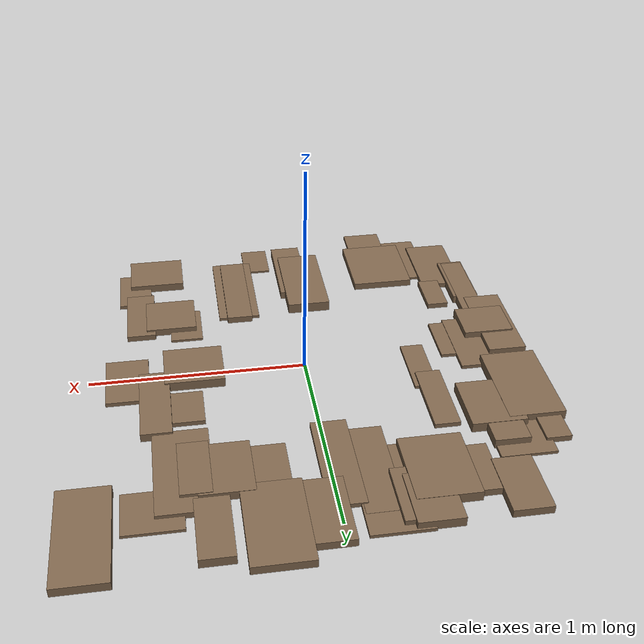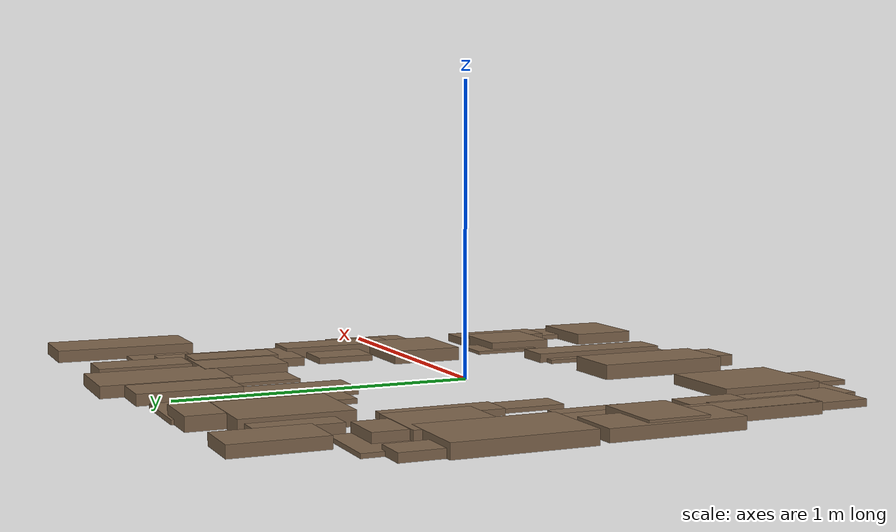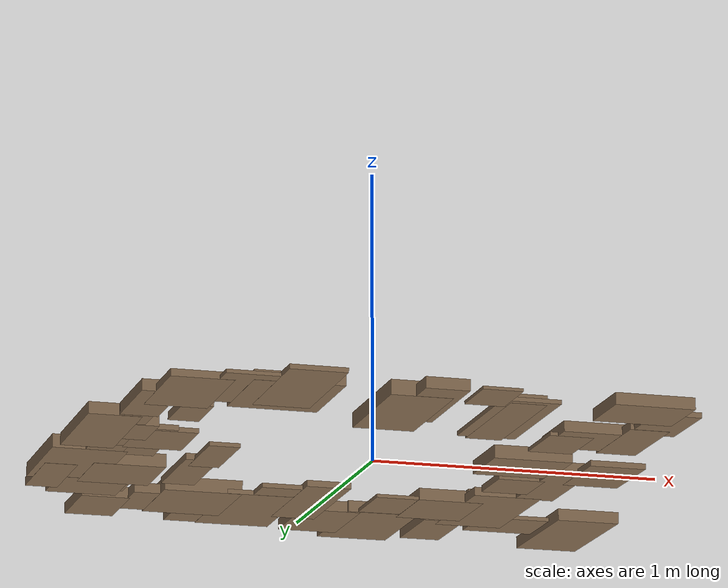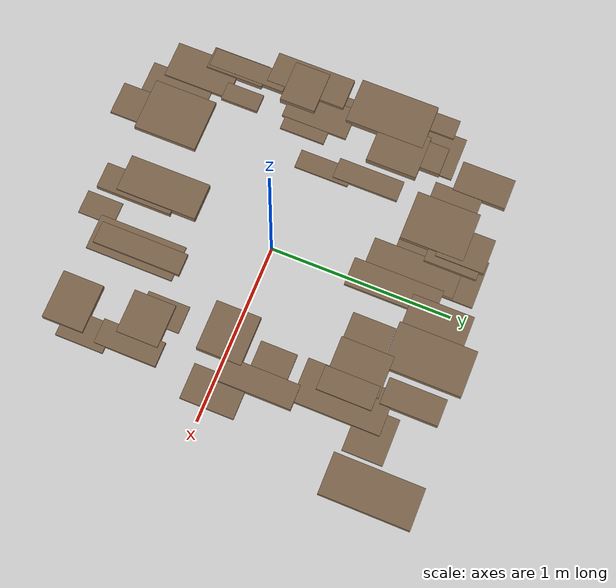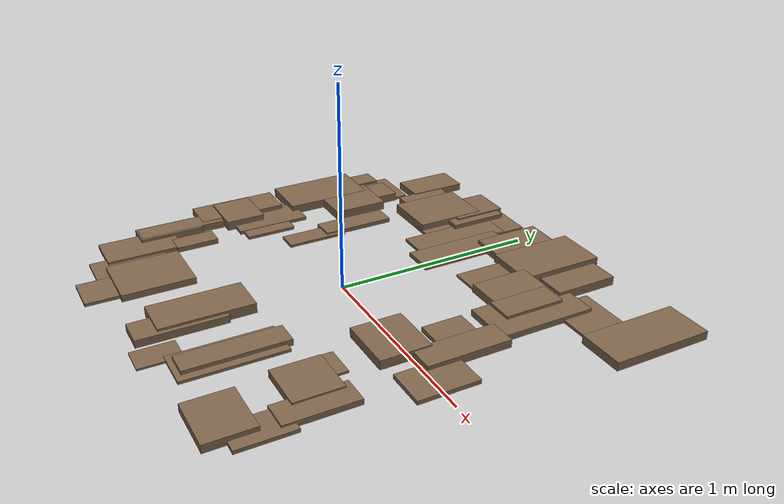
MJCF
<?xml version='1.0' encoding='UTF-8'?>
<mujoco model="stairs_scene">
  <asset/>
  <worldbody>
    <body name="stair_0" pos="-0.9636574095352295 -0.16244551583372746 0.019907603688683363">
      <geom type="box" size="0.089 0.222 0.020" rgba="0.5 0.4 0.3 1" contype="1" conaffinity="1" friction="1 0.005 0.0001"/>
    </body>
    <body name="stair_1" pos="-0.8119093473884338 -0.04998023018529252 0.009454931167921454">
      <geom type="box" size="0.091 0.185 0.009" rgba="0.5 0.4 0.3 1" contype="1" conaffinity="1" friction="1 0.005 0.0001"/>
    </body>
    <body name="stair_2" pos="-0.7870402159515202 0.5423465916035355 0.02234461127870831">
      <geom type="box" size="0.079 0.133 0.022" rgba="0.5 0.4 0.3 1" contype="1" conaffinity="1" friction="1 0.005 0.0001"/>
    </body>
    <body name="stair_3" pos="0.8236481937681119 0.020164516491206763 0.009603368127131143">
      <geom type="box" size="0.098 0.148 0.010" rgba="0.5 0.4 0.3 1" contype="1" conaffinity="1" friction="1 0.005 0.0001"/>
    </body>
    <body name="stair_4" pos="0.5551490735679114 0.6476831728476034 0.0221028211666639">
      <geom type="box" size="0.067 0.150 0.022" rgba="0.5 0.4 0.3 1" contype="1" conaffinity="1" friction="1 0.005 0.0001"/>
    </body>
    <body name="stair_5" pos="-0.7660958446419484 0.4235902248144441 0.02294797520268138">
      <geom type="box" size="0.124 0.141 0.023" rgba="0.5 0.4 0.3 1" contype="1" conaffinity="1" friction="1 0.005 0.0001"/>
    </body>
    <body name="stair_6" pos="0.49749306452180875 0.9797280946985878 0.0221237213537737">
      <geom type="box" size="0.073 0.157 0.022" rgba="0.5 0.4 0.3 1" contype="1" conaffinity="1" friction="1 0.005 0.0001"/>
    </body>
    <body name="stair_7" pos="-0.2183035395244346 0.84648129742307 0.007941587903691023">
      <geom type="box" size="0.133 0.242 0.008" rgba="0.5 0.4 0.3 1" contype="1" conaffinity="1" friction="1 0.005 0.0001"/>
    </body>
    <body name="stair_8" pos="-0.299887708913362 0.9105924794842348 0.01949932096551827">
      <geom type="box" size="0.071 0.145 0.019" rgba="0.5 0.4 0.3 1" contype="1" conaffinity="1" friction="1 0.005 0.0001"/>
    </body>
    <body name="stair_9" pos="-0.7378889314338948 -0.4737876916565482 0.013095368606770331">
      <geom type="box" size="0.051 0.105 0.013" rgba="0.5 0.4 0.3 1" contype="1" conaffinity="1" friction="1 0.005 0.0001"/>
    </body>
    <body name="stair_10" pos="0.5359801796000183 -0.38555590045506616 0.005925284446656738">
      <geom type="box" size="0.076 0.117 0.006" rgba="0.5 0.4 0.3 1" contype="1" conaffinity="1" friction="1 0.005 0.0001"/>
    </body>
    <body name="stair_11" pos="-0.8968933902620082 -0.49741738485564335 0.01941332782059265">
      <geom type="box" size="0.054 0.216 0.019" rgba="0.5 0.4 0.3 1" contype="1" conaffinity="1" friction="1 0.005 0.0001"/>
    </body>
    <body name="stair_12" pos="-0.942895550078771 0.3190721381124999 0.023388407456993856">
      <geom type="box" size="0.128 0.220 0.023" rgba="0.5 0.4 0.3 1" contype="1" conaffinity="1" friction="1 0.005 0.0001"/>
    </body>
    <body name="stair_13" pos="-0.5007960997877932 -0.768473920179062 0.016962226391960895">
      <geom type="box" size="0.148 0.177 0.017" rgba="0.5 0.4 0.3 1" contype="1" conaffinity="1" friction="1 0.005 0.0001"/>
    </body>
    <body name="stair_14" pos="0.5178956370636532 -0.0254749309550506 0.023211735469781485">
      <geom type="box" size="0.137 0.124 0.023" rgba="0.5 0.4 0.3 1" contype="1" conaffinity="1" friction="1 0.005 0.0001"/>
    </body>
    <body name="stair_15" pos="0.2667039108159166 0.6445040113232541 0.006412909336489017">
      <geom type="box" size="0.102 0.119 0.006" rgba="0.5 0.4 0.3 1" contype="1" conaffinity="1" friction="1 0.005 0.0001"/>
    </body>
    <body name="stair_16" pos="-0.5482344443179159 0.33390068585938426 0.011373465440488374">
      <geom type="box" size="0.058 0.183 0.011" rgba="0.5 0.4 0.3 1" contype="1" conaffinity="1" friction="1 0.005 0.0001"/>
    </body>
    <body name="stair_17" pos="-0.5810424350625996 0.8052713293910698 0.017193089984751712">
      <geom type="box" size="0.085 0.132 0.017" rgba="0.5 0.4 0.3 1" contype="1" conaffinity="1" friction="1 0.005 0.0001"/>
    </body>
    <body name="stair_18" pos="-0.1755938571618043 0.7303312323630342 0.0083401034865772">
      <geom type="box" size="0.082 0.246 0.008" rgba="0.5 0.4 0.3 1" contype="1" conaffinity="1" friction="1 0.005 0.0001"/>
    </body>
    <body name="stair_19" pos="0.13447392807709657 -0.9258468366677541 0.005102494794811506">
      <geom type="box" size="0.066 0.101 0.005" rgba="0.5 0.4 0.3 1" contype="1" conaffinity="1" friction="1 0.005 0.0001"/>
    </body>
    <body name="stair_20" pos="0.2665338741222807 -0.6341633617193141 0.016097098894323626">
      <geom type="box" size="0.061 0.245 0.016" rgba="0.5 0.4 0.3 1" contype="1" conaffinity="1" friction="1 0.005 0.0001"/>
    </body>
    <body name="stair_21" pos="-0.7495095732961745 -0.09097349195455506 0.00832013399848876">
      <geom type="box" size="0.100 0.126 0.008" rgba="0.5 0.4 0.3 1" contype="1" conaffinity="1" friction="1 0.005 0.0001"/>
    </body>
    <body name="stair_22" pos="-0.9131595507067489 -0.17677812138324844 0.0239720646758096">
      <geom type="box" size="0.118 0.100 0.024" rgba="0.5 0.4 0.3 1" contype="1" conaffinity="1" friction="1 0.005 0.0001"/>
    </body>
    <body name="stair_23" pos="-0.8055023210340766 -0.7350900959230158 0.01188184527727354">
      <geom type="box" size="0.103 0.187 0.012" rgba="0.5 0.4 0.3 1" contype="1" conaffinity="1" friction="1 0.005 0.0001"/>
    </body>
    <body name="stair_24" pos="0.6066615893945073 -0.45114422181156666 0.01796324049683212">
      <geom type="box" size="0.120 0.116 0.018" rgba="0.5 0.4 0.3 1" contype="1" conaffinity="1" friction="1 0.005 0.0001"/>
    </body>
    <body name="stair_25" pos="-0.9924946305753957 0.5012057167883688 0.013833827113956712">
      <geom type="box" size="0.056 0.174 0.014" rgba="0.5 0.4 0.3 1" contype="1" conaffinity="1" friction="1 0.005 0.0001"/>
    </body>
    <body name="stair_26" pos="-0.034934587617796886 0.6740465962456268 0.010854341017351317">
      <geom type="box" size="0.079 0.248 0.011" rgba="0.5 0.4 0.3 1" contype="1" conaffinity="1" friction="1 0.005 0.0001"/>
    </body>
    <body name="stair_27" pos="0.26765797699172933 -0.6600830269452251 0.0071223476399600825">
      <geom type="box" size="0.099 0.245 0.007" rgba="0.5 0.4 0.3 1" contype="1" conaffinity="1" friction="1 0.005 0.0001"/>
    </body>
    <body name="stair_28" pos="0.6653031902878834 -0.8381741271565177 0.019941601556767313">
      <geom type="box" size="0.134 0.114 0.020" rgba="0.5 0.4 0.3 1" contype="1" conaffinity="1" friction="1 0.005 0.0001"/>
    </body>
    <body name="stair_29" pos="0.7319777185946055 0.8409628200069248 0.0068322497143873265">
      <geom type="box" size="0.127 0.110 0.007" rgba="0.5 0.4 0.3 1" contype="1" conaffinity="1" friction="1 0.005 0.0001"/>
    </body>
    <body name="stair_30" pos="0.7533742602497755 -0.4784159813486346 0.01368216421712869">
      <geom type="box" size="0.068 0.172 0.014" rgba="0.5 0.4 0.3 1" contype="1" conaffinity="1" friction="1 0.005 0.0001"/>
    </body>
    <body name="stair_31" pos="0.4325627584705467 0.6632701523354281 0.020577688737918032">
      <geom type="box" size="0.117 0.145 0.021" rgba="0.5 0.4 0.3 1" contype="1" conaffinity="1" friction="1 0.005 0.0001"/>
    </body>
    <body name="stair_32" pos="0.2571370262448145 0.9811868056845818 0.020183564728006444">
      <geom type="box" size="0.128 0.214 0.020" rgba="0.5 0.4 0.3 1" contype="1" conaffinity="1" friction="1 0.005 0.0001"/>
    </body>
    <body name="stair_33" pos="-0.4351598850603564 0.781656113107752 0.02357555045024475">
      <geom type="box" size="0.138 0.176 0.024" rgba="0.5 0.4 0.3 1" contype="1" conaffinity="1" friction="1 0.005 0.0001"/>
    </body>
    <body name="stair_34" pos="-0.37047504032345824 0.9451816848109726 0.0234485456713376">
      <geom type="box" size="0.098 0.134 0.023" rgba="0.5 0.4 0.3 1" contype="1" conaffinity="1" friction="1 0.005 0.0001"/>
    </body>
    <body name="stair_35" pos="-0.8399988247574481 0.6290996171307379 0.0070958092037607685">
      <geom type="box" size="0.124 0.115 0.007" rgba="0.5 0.4 0.3 1" contype="1" conaffinity="1" friction="1 0.005 0.0001"/>
    </body>
    <body name="stair_36" pos="0.06955256581290858 0.9486154823810204 0.019134749665277402">
      <geom type="box" size="0.106 0.169 0.019" rgba="0.5 0.4 0.3 1" contype="1" conaffinity="1" friction="1 0.005 0.0001"/>
    </body>
    <body name="stair_37" pos="-0.8904908869487589 -0.5607520637928585 0.01911566154250359">
      <geom type="box" size="0.063 0.161 0.019" rgba="0.5 0.4 0.3 1" contype="1" conaffinity="1" friction="1 0.005 0.0001"/>
    </body>
    <body name="stair_38" pos="0.5702367986735395 0.24363712082625777 0.01102150518431574">
      <geom type="box" size="0.082 0.101 0.011" rgba="0.5 0.4 0.3 1" contype="1" conaffinity="1" friction="1 0.005 0.0001"/>
    </body>
    <body name="stair_39" pos="-0.523424977511642 0.09148347634016085 0.007264301168588451">
      <geom type="box" size="0.053 0.152 0.007" rgba="0.5 0.4 0.3 1" contype="1" conaffinity="1" friction="1 0.005 0.0001"/>
    </body>
    <body name="stair_40" pos="-0.034318678787280454 -0.7774788811720226 0.01904642268636741">
      <geom type="box" size="0.073 0.212 0.019" rgba="0.5 0.4 0.3 1" contype="1" conaffinity="1" friction="1 0.005 0.0001"/>
    </body>
    <body name="stair_41" pos="0.9979641840834639 0.9450350690044858 0.020807088326738395">
      <geom type="box" size="0.113 0.245 0.021" rgba="0.5 0.4 0.3 1" contype="1" conaffinity="1" friction="1 0.005 0.0001"/>
    </body>
    <body name="stair_42" pos="0.7016376655663412 0.21271915677452613 0.02005251230227555">
      <geom type="box" size="0.069 0.206 0.020" rgba="0.5 0.4 0.3 1" contype="1" conaffinity="1" friction="1 0.005 0.0001"/>
    </body>
    <body name="stair_43" pos="-0.6216705546918935 -0.8240636004412645 0.006316514048667204">
      <geom type="box" size="0.131 0.181 0.006" rgba="0.5 0.4 0.3 1" contype="1" conaffinity="1" friction="1 0.005 0.0001"/>
    </body>
    <body name="stair_44" pos="-0.8943828122029414 0.185447669713116 0.005429496720277682">
      <geom type="box" size="0.064 0.170 0.005" rgba="0.5 0.4 0.3 1" contype="1" conaffinity="1" friction="1 0.005 0.0001"/>
    </body>
    <body name="stair_45" pos="0.6030181996718393 0.6422436564171916 0.01479550686802934">
      <geom type="box" size="0.121 0.240 0.015" rgba="0.5 0.4 0.3 1" contype="1" conaffinity="1" friction="1 0.005 0.0001"/>
    </body>
    <body name="stair_46" pos="-0.4833081117775224 -0.8717472192462332 0.007747304078004891">
      <geom type="box" size="0.094 0.234 0.008" rgba="0.5 0.4 0.3 1" contype="1" conaffinity="1" friction="1 0.005 0.0001"/>
    </body>
    <body name="stair_47" pos="-0.08689948614518594 -0.6574166196298301 0.024579241862288683">
      <geom type="box" size="0.103 0.226 0.025" rgba="0.5 0.4 0.3 1" contype="1" conaffinity="1" friction="1 0.005 0.0001"/>
    </body>
    <body name="stair_48" pos="0.7774944166265112 -0.7205423530296704 0.009380306429371758">
      <geom type="box" size="0.080 0.133 0.009" rgba="0.5 0.4 0.3 1" contype="1" conaffinity="1" friction="1 0.005 0.0001"/>
    </body>
    <body name="stair_49" pos="-0.7437662046262068 0.9173505930106138 0.018693279885546647">
      <geom type="box" size="0.086 0.147 0.019" rgba="0.5 0.4 0.3 1" contype="1" conaffinity="1" friction="1 0.005 0.0001"/>
    </body>
  </worldbody>
</mujoco>
